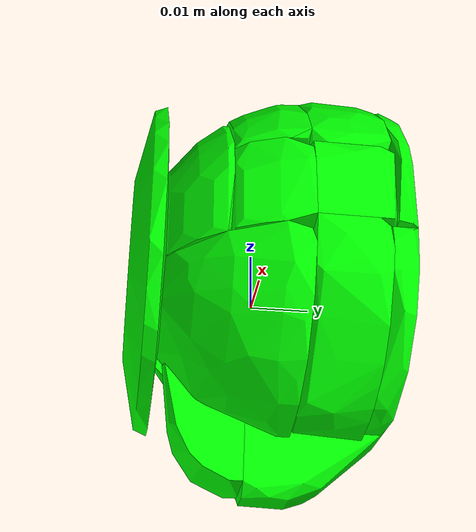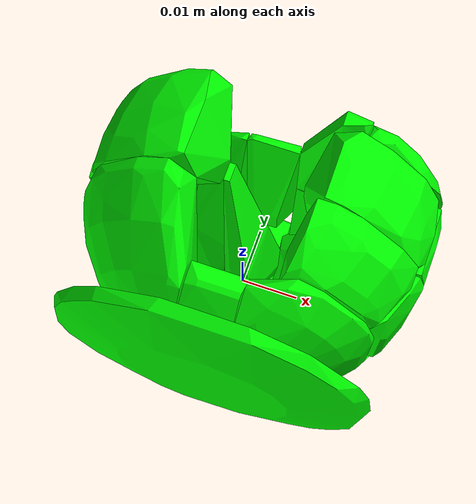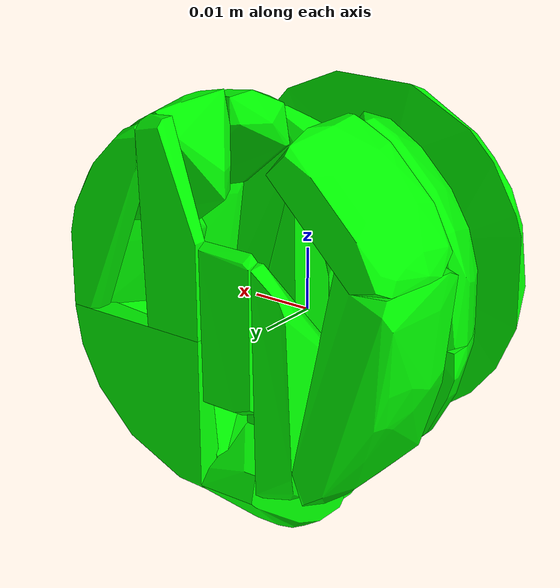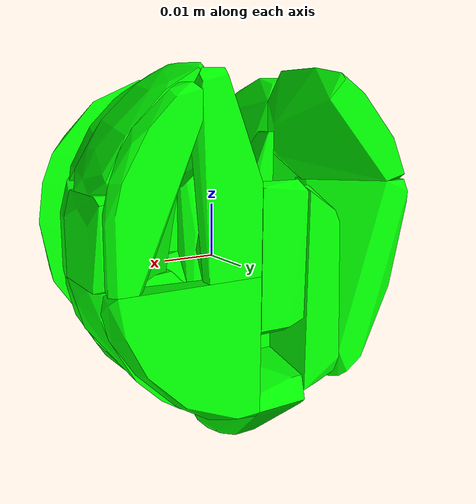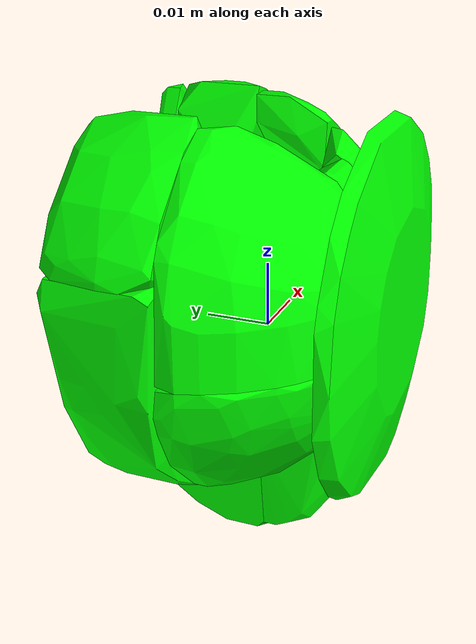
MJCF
<mujoco model="shapenet9-14">
  <asset>
    <mesh file="meshes/shapenet9-14/shapenet9-14_0.stl" name="shapenet9-14_0" scale="0.1 0.1 0.1"/>
    <mesh file="meshes/shapenet9-14/shapenet9-14_1.stl" name="shapenet9-14_1" scale="0.1 0.1 0.1"/>
    <mesh file="meshes/shapenet9-14/shapenet9-14_2.stl" name="shapenet9-14_2" scale="0.1 0.1 0.1"/>
    <mesh file="meshes/shapenet9-14/shapenet9-14_3.stl" name="shapenet9-14_3" scale="0.1 0.1 0.1"/>
    <mesh file="meshes/shapenet9-14/shapenet9-14_4.stl" name="shapenet9-14_4" scale="0.1 0.1 0.1"/>
    <mesh file="meshes/shapenet9-14/shapenet9-14_5.stl" name="shapenet9-14_5" scale="0.1 0.1 0.1"/>
    <mesh file="meshes/shapenet9-14/shapenet9-14_6.stl" name="shapenet9-14_6" scale="0.1 0.1 0.1"/>
    <mesh file="meshes/shapenet9-14/shapenet9-14_7.stl" name="shapenet9-14_7" scale="0.1 0.1 0.1"/>
    <mesh file="meshes/shapenet9-14/shapenet9-14_8.stl" name="shapenet9-14_8" scale="0.1 0.1 0.1"/>
    <mesh file="meshes/shapenet9-14/shapenet9-14_9.stl" name="shapenet9-14_9" scale="0.1 0.1 0.1"/>
    <mesh file="meshes/shapenet9-14/shapenet9-14_10.stl" name="shapenet9-14_10" scale="0.1 0.1 0.1"/>
    <mesh file="meshes/shapenet9-14/shapenet9-14_11.stl" name="shapenet9-14_11" scale="0.1 0.1 0.1"/>
    <mesh file="meshes/shapenet9-14/shapenet9-14_12.stl" name="shapenet9-14_12" scale="0.1 0.1 0.1"/>
    <mesh file="meshes/shapenet9-14/shapenet9-14_13.stl" name="shapenet9-14_13" scale="0.1 0.1 0.1"/>
    <mesh file="meshes/shapenet9-14/shapenet9-14_14.stl" name="shapenet9-14_14" scale="0.1 0.1 0.1"/>
    <mesh file="meshes/shapenet9-14/shapenet9-14_15.stl" name="shapenet9-14_15" scale="0.1 0.1 0.1"/>
    <mesh file="meshes/shapenet9-14/shapenet9-14_16.stl" name="shapenet9-14_16" scale="0.1 0.1 0.1"/>
    <mesh file="meshes/shapenet9-14/shapenet9-14_17.stl" name="shapenet9-14_17" scale="0.1 0.1 0.1"/>
    <mesh file="meshes/shapenet9-14/shapenet9-14_18.stl" name="shapenet9-14_18" scale="0.1 0.1 0.1"/>
    <mesh file="meshes/shapenet9-14/shapenet9-14_19.stl" name="shapenet9-14_19" scale="0.1 0.1 0.1"/>
  </asset>
  <worldbody>
    <body>
      <body name="collision">
        <geom pos="0 0 0" mesh="shapenet9-14_0" type="mesh" solimp="0.998 0.998 0.001" solref="0.001 1" density="100" friction="0.95 0.3 0.1" rgba="0 1 0 1" group="1" condim="4"/>
        <geom pos="0 0 0" mesh="shapenet9-14_1" type="mesh" solimp="0.998 0.998 0.001" solref="0.001 1" density="100" friction="0.95 0.3 0.1" rgba="0 1 0 1" group="1" condim="4"/>
        <geom pos="0 0 0" mesh="shapenet9-14_2" type="mesh" solimp="0.998 0.998 0.001" solref="0.001 1" density="100" friction="0.95 0.3 0.1" rgba="0 1 0 1" group="1" condim="4"/>
        <geom pos="0 0 0" mesh="shapenet9-14_3" type="mesh" solimp="0.998 0.998 0.001" solref="0.001 1" density="100" friction="0.95 0.3 0.1" rgba="0 1 0 1" group="1" condim="4"/>
        <geom pos="0 0 0" mesh="shapenet9-14_4" type="mesh" solimp="0.998 0.998 0.001" solref="0.001 1" density="100" friction="0.95 0.3 0.1" rgba="0 1 0 1" group="1" condim="4"/>
        <geom pos="0 0 0" mesh="shapenet9-14_5" type="mesh" solimp="0.998 0.998 0.001" solref="0.001 1" density="100" friction="0.95 0.3 0.1" rgba="0 1 0 1" group="1" condim="4"/>
        <geom pos="0 0 0" mesh="shapenet9-14_6" type="mesh" solimp="0.998 0.998 0.001" solref="0.001 1" density="100" friction="0.95 0.3 0.1" rgba="0 1 0 1" group="1" condim="4"/>
        <geom pos="0 0 0" mesh="shapenet9-14_7" type="mesh" solimp="0.998 0.998 0.001" solref="0.001 1" density="100" friction="0.95 0.3 0.1" rgba="0 1 0 1" group="1" condim="4"/>
        <geom pos="0 0 0" mesh="shapenet9-14_8" type="mesh" solimp="0.998 0.998 0.001" solref="0.001 1" density="100" friction="0.95 0.3 0.1" rgba="0 1 0 1" group="1" condim="4"/>
        <geom pos="0 0 0" mesh="shapenet9-14_9" type="mesh" solimp="0.998 0.998 0.001" solref="0.001 1" density="100" friction="0.95 0.3 0.1" rgba="0 1 0 1" group="1" condim="4"/>
        <geom pos="0 0 0" mesh="shapenet9-14_10" type="mesh" solimp="0.998 0.998 0.001" solref="0.001 1" density="100" friction="0.95 0.3 0.1" rgba="0 1 0 1" group="1" condim="4"/>
        <geom pos="0 0 0" mesh="shapenet9-14_11" type="mesh" solimp="0.998 0.998 0.001" solref="0.001 1" density="100" friction="0.95 0.3 0.1" rgba="0 1 0 1" group="1" condim="4"/>
        <geom pos="0 0 0" mesh="shapenet9-14_12" type="mesh" solimp="0.998 0.998 0.001" solref="0.001 1" density="100" friction="0.95 0.3 0.1" rgba="0 1 0 1" group="1" condim="4"/>
        <geom pos="0 0 0" mesh="shapenet9-14_13" type="mesh" solimp="0.998 0.998 0.001" solref="0.001 1" density="100" friction="0.95 0.3 0.1" rgba="0 1 0 1" group="1" condim="4"/>
        <geom pos="0 0 0" mesh="shapenet9-14_14" type="mesh" solimp="0.998 0.998 0.001" solref="0.001 1" density="100" friction="0.95 0.3 0.1" rgba="0 1 0 1" group="1" condim="4"/>
        <geom pos="0 0 0" mesh="shapenet9-14_15" type="mesh" solimp="0.998 0.998 0.001" solref="0.001 1" density="100" friction="0.95 0.3 0.1" rgba="0 1 0 1" group="1" condim="4"/>
        <geom pos="0 0 0" mesh="shapenet9-14_16" type="mesh" solimp="0.998 0.998 0.001" solref="0.001 1" density="100" friction="0.95 0.3 0.1" rgba="0 1 0 1" group="1" condim="4"/>
        <geom pos="0 0 0" mesh="shapenet9-14_17" type="mesh" solimp="0.998 0.998 0.001" solref="0.001 1" density="100" friction="0.95 0.3 0.1" rgba="0 1 0 1" group="1" condim="4"/>
        <geom pos="0 0 0" mesh="shapenet9-14_18" type="mesh" solimp="0.998 0.998 0.001" solref="0.001 1" density="100" friction="0.95 0.3 0.1" rgba="0 1 0 1" group="1" condim="4"/>
        <geom pos="0 0 0" mesh="shapenet9-14_19" type="mesh" solimp="0.998 0.998 0.001" solref="0.001 1" density="100" friction="0.95 0.3 0.1" rgba="0 1 0 1" group="1" condim="4"/>
      </body>
      <body name="visual">
        <geom pos="0 0 0" mesh="shapenet9-14_0" type="mesh" rgba="0 1 0 1" conaffinity="0" contype="0" group="0" mass="0.0001"/>
        <geom pos="0 0 0" mesh="shapenet9-14_1" type="mesh" rgba="0 1 0 1" conaffinity="0" contype="0" group="0" mass="0.0001"/>
        <geom pos="0 0 0" mesh="shapenet9-14_2" type="mesh" rgba="0 1 0 1" conaffinity="0" contype="0" group="0" mass="0.0001"/>
        <geom pos="0 0 0" mesh="shapenet9-14_3" type="mesh" rgba="0 1 0 1" conaffinity="0" contype="0" group="0" mass="0.0001"/>
        <geom pos="0 0 0" mesh="shapenet9-14_4" type="mesh" rgba="0 1 0 1" conaffinity="0" contype="0" group="0" mass="0.0001"/>
        <geom pos="0 0 0" mesh="shapenet9-14_5" type="mesh" rgba="0 1 0 1" conaffinity="0" contype="0" group="0" mass="0.0001"/>
        <geom pos="0 0 0" mesh="shapenet9-14_6" type="mesh" rgba="0 1 0 1" conaffinity="0" contype="0" group="0" mass="0.0001"/>
        <geom pos="0 0 0" mesh="shapenet9-14_7" type="mesh" rgba="0 1 0 1" conaffinity="0" contype="0" group="0" mass="0.0001"/>
        <geom pos="0 0 0" mesh="shapenet9-14_8" type="mesh" rgba="0 1 0 1" conaffinity="0" contype="0" group="0" mass="0.0001"/>
        <geom pos="0 0 0" mesh="shapenet9-14_9" type="mesh" rgba="0 1 0 1" conaffinity="0" contype="0" group="0" mass="0.0001"/>
        <geom pos="0 0 0" mesh="shapenet9-14_10" type="mesh" rgba="0 1 0 1" conaffinity="0" contype="0" group="0" mass="0.0001"/>
        <geom pos="0 0 0" mesh="shapenet9-14_11" type="mesh" rgba="0 1 0 1" conaffinity="0" contype="0" group="0" mass="0.0001"/>
        <geom pos="0 0 0" mesh="shapenet9-14_12" type="mesh" rgba="0 1 0 1" conaffinity="0" contype="0" group="0" mass="0.0001"/>
        <geom pos="0 0 0" mesh="shapenet9-14_13" type="mesh" rgba="0 1 0 1" conaffinity="0" contype="0" group="0" mass="0.0001"/>
        <geom pos="0 0 0" mesh="shapenet9-14_14" type="mesh" rgba="0 1 0 1" conaffinity="0" contype="0" group="0" mass="0.0001"/>
        <geom pos="0 0 0" mesh="shapenet9-14_15" type="mesh" rgba="0 1 0 1" conaffinity="0" contype="0" group="0" mass="0.0001"/>
        <geom pos="0 0 0" mesh="shapenet9-14_16" type="mesh" rgba="0 1 0 1" conaffinity="0" contype="0" group="0" mass="0.0001"/>
        <geom pos="0 0 0" mesh="shapenet9-14_17" type="mesh" rgba="0 1 0 1" conaffinity="0" contype="0" group="0" mass="0.0001"/>
        <geom pos="0 0 0" mesh="shapenet9-14_18" type="mesh" rgba="0 1 0 1" conaffinity="0" contype="0" group="0" mass="0.0001"/>
        <geom pos="0 0 0" mesh="shapenet9-14_19" type="mesh" rgba="0 1 0 1" conaffinity="0" contype="0" group="0" mass="0.0001"/>
      </body>
      <site rgba="0 0 0 0" size="0.005" pos="0 0 -0.06" name="bottom_site"/>
      <site rgba="0 0 0 0" size="0.005" pos="0 0 0.04" name="top_site"/>
      <site rgba="0 0 0 0" size="0.005" pos="0.025 0.025 0" name="horizontal_radius_site"/>
    </body>
  </worldbody>
</mujoco>
